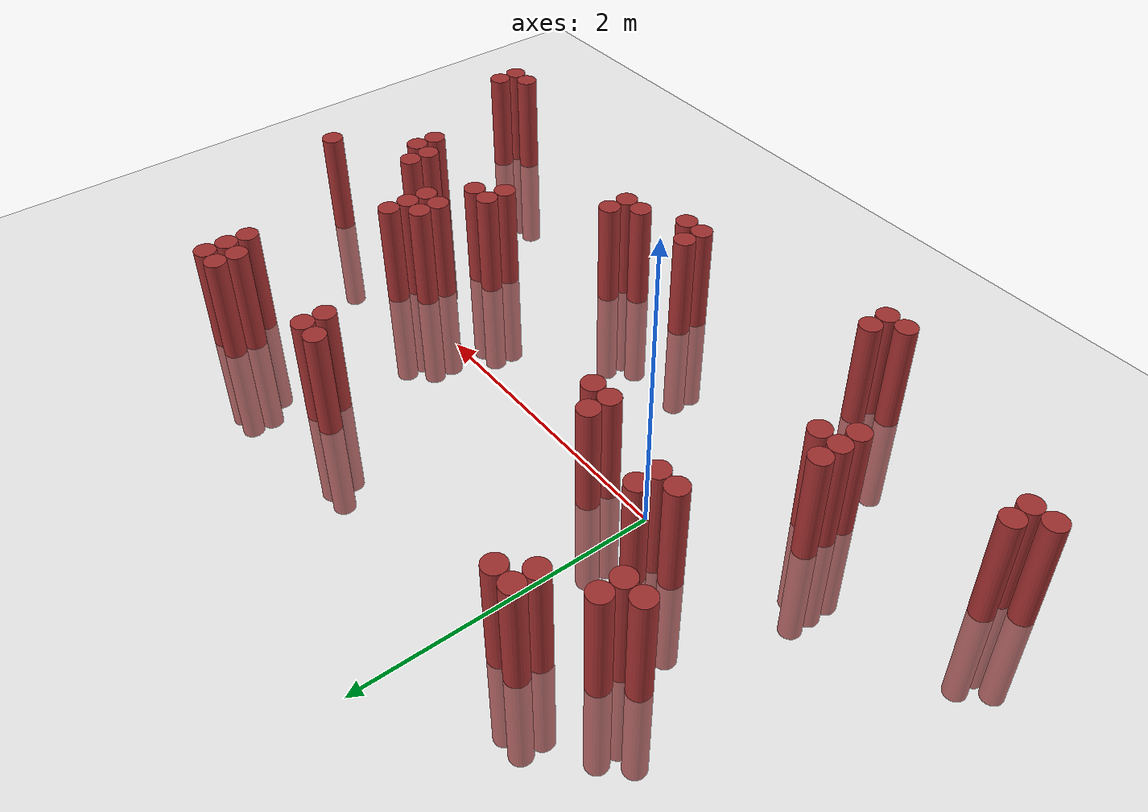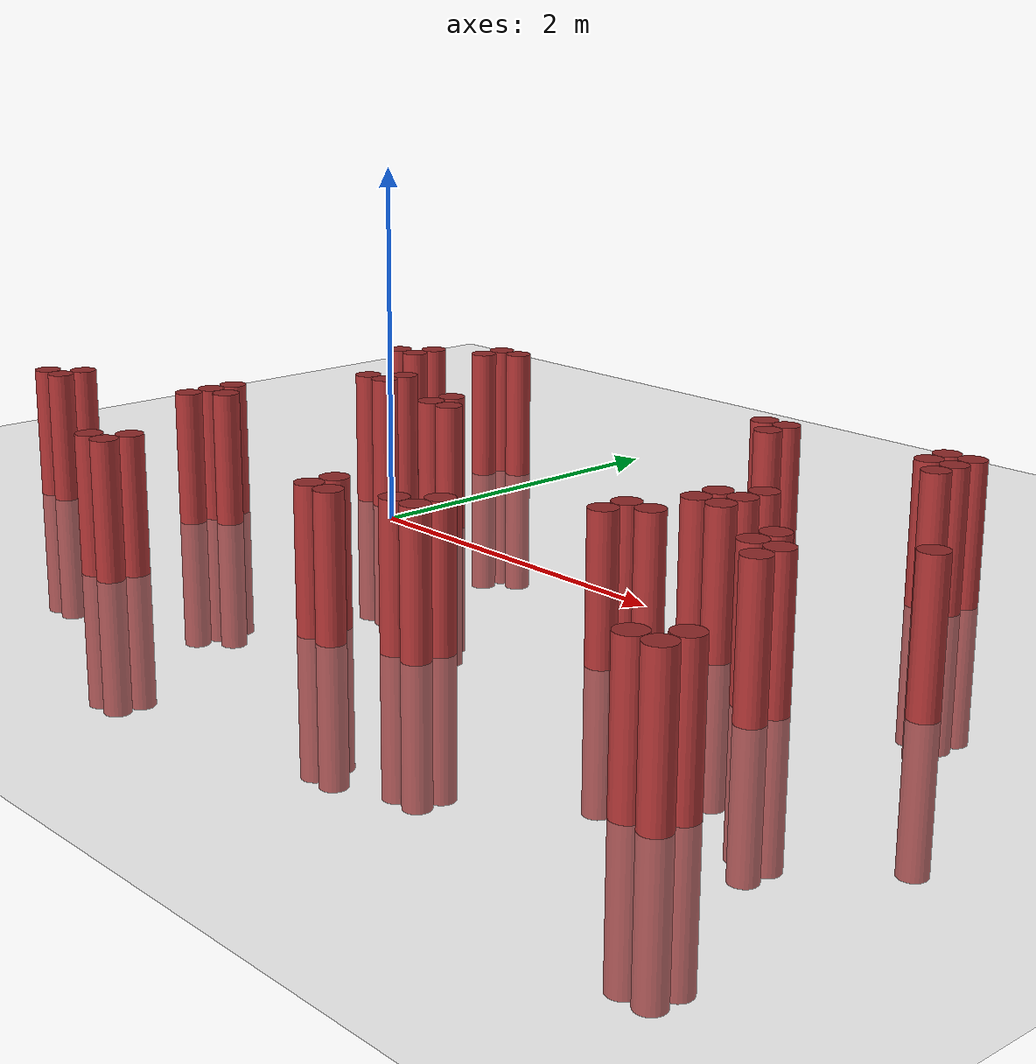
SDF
<sdf version="1.6">
 <world name="default">
  <model name="ground_plane">
   <static>1</static>
   <link name="link">
    <collision name="collision">
     <geometry><plane><normal>0 0 1</normal><size>100 100</size></plane></geometry>
     <surface><friction><ode><mu>100</mu><mu2>50</mu2></ode></friction></surface>
    </collision>
    <visual name="visual">
     <cast_shadows>0</cast_shadows>
     <geometry><plane><normal>0 0 1</normal><size>100 100</size></plane></geometry>
     <material>
      <script><uri>file://media/materials/scripts/gazebo.material</uri><name>Gazebo/Grey</name></script>
     </material>
    </visual>
   </link>
  </model>
  <model name="unit_cylinder_313">
   <static>1</static>
   <pose>-1.775000 -1.175000 0.000000 0.000000 0.000000 0.000000</pose>
   <link name="link">
    <inertial>
     <mass>1</mass>
     <inertia><ixx>0.145833</ixx><ixy>0</ixy><ixz>0</ixz><iyy>0.145833</iyy><iyz>0</iyz><izz>0.125</izz></inertia>
    </inertial>
    <collision name="collision">
     <geometry><cylinder><radius>0.075000</radius><length>1.5</length></cylinder></geometry>
    </collision>
    <visual name="visual">
     <geometry><cylinder><radius>0.075000</radius><length>1.5</length></cylinder></geometry>
     <material>
      <ambient>0.648000 0.192000 0.192000 1</ambient>
      <diffuse>0.648000 0.192000 0.192000 1</diffuse>
     </material>
     <material>
      <script><name>Gazebo/Grey</name><uri>file://media/materials/scripts/gazebo.material</uri></script>
     </material>
    </visual>
   </link>
  </model>
  <model name="unit_cylinder_315">
   <static>1</static>
   <pose>-1.625000 -1.175000 0.000000 0.000000 0.000000 0.000000</pose>
   <link name="link">
    <inertial>
     <mass>1</mass>
     <inertia><ixx>0.145833</ixx><ixy>0</ixy><ixz>0</ixz><iyy>0.145833</iyy><iyz>0</iyz><izz>0.125</izz></inertia>
    </inertial>
    <collision name="collision">
     <geometry><cylinder><radius>0.075000</radius><length>1.5</length></cylinder></geometry>
    </collision>
    <visual name="visual">
     <geometry><cylinder><radius>0.075000</radius><length>1.5</length></cylinder></geometry>
     <material>
      <ambient>0.648000 0.192000 0.192000 1</ambient>
      <diffuse>0.648000 0.192000 0.192000 1</diffuse>
     </material>
     <material>
      <script><name>Gazebo/Grey</name><uri>file://media/materials/scripts/gazebo.material</uri></script>
     </material>
    </visual>
   </link>
  </model>
  <model name="unit_cylinder_316">
   <static>1</static>
   <pose>-1.625000 -1.025000 0.000000 0.000000 0.000000 0.000000</pose>
   <link name="link">
    <inertial>
     <mass>1</mass>
     <inertia><ixx>0.145833</ixx><ixy>0</ixy><ixz>0</ixz><iyy>0.145833</iyy><iyz>0</iyz><izz>0.125</izz></inertia>
    </inertial>
    <collision name="collision">
     <geometry><cylinder><radius>0.075000</radius><length>1.5</length></cylinder></geometry>
    </collision>
    <visual name="visual">
     <geometry><cylinder><radius>0.075000</radius><length>1.5</length></cylinder></geometry>
     <material>
      <ambient>0.648000 0.192000 0.192000 1</ambient>
      <diffuse>0.648000 0.192000 0.192000 1</diffuse>
     </material>
     <material>
      <script><name>Gazebo/Grey</name><uri>file://media/materials/scripts/gazebo.material</uri></script>
     </material>
    </visual>
   </link>
  </model>
  <model name="unit_cylinder_329">
   <static>1</static>
   <pose>-0.875000 0.775000 0.000000 0.000000 0.000000 0.000000</pose>
   <link name="link">
    <inertial>
     <mass>1</mass>
     <inertia><ixx>0.145833</ixx><ixy>0</ixy><ixz>0</ixz><iyy>0.145833</iyy><iyz>0</iyz><izz>0.125</izz></inertia>
    </inertial>
    <collision name="collision">
     <geometry><cylinder><radius>0.075000</radius><length>1.5</length></cylinder></geometry>
    </collision>
    <visual name="visual">
     <geometry><cylinder><radius>0.075000</radius><length>1.5</length></cylinder></geometry>
     <material>
      <ambient>0.648000 0.192000 0.192000 1</ambient>
      <diffuse>0.648000 0.192000 0.192000 1</diffuse>
     </material>
     <material>
      <script><name>Gazebo/Grey</name><uri>file://media/materials/scripts/gazebo.material</uri></script>
     </material>
    </visual>
   </link>
  </model>
  <model name="unit_cylinder_333">
   <static>1</static>
   <pose>-0.725000 -0.875000 0.000000 0.000000 0.000000 0.000000</pose>
   <link name="link">
    <inertial>
     <mass>1</mass>
     <inertia><ixx>0.145833</ixx><ixy>0</ixy><ixz>0</ixz><iyy>0.145833</iyy><iyz>0</iyz><izz>0.125</izz></inertia>
    </inertial>
    <collision name="collision">
     <geometry><cylinder><radius>0.075000</radius><length>1.5</length></cylinder></geometry>
    </collision>
    <visual name="visual">
     <geometry><cylinder><radius>0.075000</radius><length>1.5</length></cylinder></geometry>
     <material>
      <ambient>0.648000 0.192000 0.192000 1</ambient>
      <diffuse>0.648000 0.192000 0.192000 1</diffuse>
     </material>
     <material>
      <script><name>Gazebo/Grey</name><uri>file://media/materials/scripts/gazebo.material</uri></script>
     </material>
    </visual>
   </link>
  </model>
  <model name="unit_cylinder_334">
   <static>1</static>
   <pose>-0.725000 -0.725000 0.000000 0.000000 0.000000 0.000000</pose>
   <link name="link">
    <inertial>
     <mass>1</mass>
     <inertia><ixx>0.145833</ixx><ixy>0</ixy><ixz>0</ixz><iyy>0.145833</iyy><iyz>0</iyz><izz>0.125</izz></inertia>
    </inertial>
    <collision name="collision">
     <geometry><cylinder><radius>0.075000</radius><length>1.5</length></cylinder></geometry>
    </collision>
    <visual name="visual">
     <geometry><cylinder><radius>0.075000</radius><length>1.5</length></cylinder></geometry>
     <material>
      <ambient>0.648000 0.192000 0.192000 1</ambient>
      <diffuse>0.648000 0.192000 0.192000 1</diffuse>
     </material>
     <material>
      <script><name>Gazebo/Grey</name><uri>file://media/materials/scripts/gazebo.material</uri></script>
     </material>
    </visual>
   </link>
  </model>
  <model name="unit_cylinder_335">
   <static>1</static>
   <pose>-0.725000 -0.575000 0.000000 0.000000 0.000000 0.000000</pose>
   <link name="link">
    <inertial>
     <mass>1</mass>
     <inertia><ixx>0.145833</ixx><ixy>0</ixy><ixz>0</ixz><iyy>0.145833</iyy><iyz>0</iyz><izz>0.125</izz></inertia>
    </inertial>
    <collision name="collision">
     <geometry><cylinder><radius>0.075000</radius><length>1.5</length></cylinder></geometry>
    </collision>
    <visual name="visual">
     <geometry><cylinder><radius>0.075000</radius><length>1.5</length></cylinder></geometry>
     <material>
      <ambient>0.648000 0.192000 0.192000 1</ambient>
      <diffuse>0.648000 0.192000 0.192000 1</diffuse>
     </material>
     <material>
      <script><name>Gazebo/Grey</name><uri>file://media/materials/scripts/gazebo.material</uri></script>
     </material>
    </visual>
   </link>
  </model>
  <model name="unit_cylinder_336">
   <static>1</static>
   <pose>-0.725000 0.775000 0.000000 0.000000 0.000000 0.000000</pose>
   <link name="link">
    <inertial>
     <mass>1</mass>
     <inertia><ixx>0.145833</ixx><ixy>0</ixy><ixz>0</ixz><iyy>0.145833</iyy><iyz>0</iyz><izz>0.125</izz></inertia>
    </inertial>
    <collision name="collision">
     <geometry><cylinder><radius>0.075000</radius><length>1.5</length></cylinder></geometry>
    </collision>
    <visual name="visual">
     <geometry><cylinder><radius>0.075000</radius><length>1.5</length></cylinder></geometry>
     <material>
      <ambient>0.648000 0.192000 0.192000 1</ambient>
      <diffuse>0.648000 0.192000 0.192000 1</diffuse>
     </material>
     <material>
      <script><name>Gazebo/Grey</name><uri>file://media/materials/scripts/gazebo.material</uri></script>
     </material>
    </visual>
   </link>
  </model>
  <model name="unit_cylinder_337">
   <static>1</static>
   <pose>-0.725000 0.925000 0.000000 0.000000 0.000000 0.000000</pose>
   <link name="link">
    <inertial>
     <mass>1</mass>
     <inertia><ixx>0.145833</ixx><ixy>0</ixy><ixz>0</ixz><iyy>0.145833</iyy><iyz>0</iyz><izz>0.125</izz></inertia>
    </inertial>
    <collision name="collision">
     <geometry><cylinder><radius>0.075000</radius><length>1.5</length></cylinder></geometry>
    </collision>
    <visual name="visual">
     <geometry><cylinder><radius>0.075000</radius><length>1.5</length></cylinder></geometry>
     <material>
      <ambient>0.648000 0.192000 0.192000 1</ambient>
      <diffuse>0.648000 0.192000 0.192000 1</diffuse>
     </material>
     <material>
      <script><name>Gazebo/Grey</name><uri>file://media/materials/scripts/gazebo.material</uri></script>
     </material>
    </visual>
   </link>
  </model>
  <model name="unit_cylinder_339">
   <static>1</static>
   <pose>-0.575000 -0.725000 0.000000 0.000000 0.000000 0.000000</pose>
   <link name="link">
    <inertial>
     <mass>1</mass>
     <inertia><ixx>0.145833</ixx><ixy>0</ixy><ixz>0</ixz><iyy>0.145833</iyy><iyz>0</iyz><izz>0.125</izz></inertia>
    </inertial>
    <collision name="collision">
     <geometry><cylinder><radius>0.075000</radius><length>1.5</length></cylinder></geometry>
    </collision>
    <visual name="visual">
     <geometry><cylinder><radius>0.075000</radius><length>1.5</length></cylinder></geometry>
     <material>
      <ambient>0.648000 0.192000 0.192000 1</ambient>
      <diffuse>0.648000 0.192000 0.192000 1</diffuse>
     </material>
     <material>
      <script><name>Gazebo/Grey</name><uri>file://media/materials/scripts/gazebo.material</uri></script>
     </material>
    </visual>
   </link>
  </model>
  <model name="unit_cylinder_340">
   <static>1</static>
   <pose>-0.425000 0.175000 0.000000 0.000000 0.000000 0.000000</pose>
   <link name="link">
    <inertial>
     <mass>1</mass>
     <inertia><ixx>0.145833</ixx><ixy>0</ixy><ixz>0</ixz><iyy>0.145833</iyy><iyz>0</iyz><izz>0.125</izz></inertia>
    </inertial>
    <collision name="collision">
     <geometry><cylinder><radius>0.075000</radius><length>1.5</length></cylinder></geometry>
    </collision>
    <visual name="visual">
     <geometry><cylinder><radius>0.075000</radius><length>1.5</length></cylinder></geometry>
     <material>
      <ambient>0.648000 0.192000 0.192000 1</ambient>
      <diffuse>0.648000 0.192000 0.192000 1</diffuse>
     </material>
     <material>
      <script><name>Gazebo/Grey</name><uri>file://media/materials/scripts/gazebo.material</uri></script>
     </material>
    </visual>
   </link>
  </model>
  <model name="unit_cylinder_341">
   <static>1</static>
   <pose>-0.425000 1.075000 0.000000 0.000000 0.000000 0.000000</pose>
   <link name="link">
    <inertial>
     <mass>1</mass>
     <inertia><ixx>0.145833</ixx><ixy>0</ixy><ixz>0</ixz><iyy>0.145833</iyy><iyz>0</iyz><izz>0.125</izz></inertia>
    </inertial>
    <collision name="collision">
     <geometry><cylinder><radius>0.075000</radius><length>1.5</length></cylinder></geometry>
    </collision>
    <visual name="visual">
     <geometry><cylinder><radius>0.075000</radius><length>1.5</length></cylinder></geometry>
     <material>
      <ambient>0.648000 0.192000 0.192000 1</ambient>
      <diffuse>0.648000 0.192000 0.192000 1</diffuse>
     </material>
     <material>
      <script><name>Gazebo/Grey</name><uri>file://media/materials/scripts/gazebo.material</uri></script>
     </material>
    </visual>
   </link>
  </model>
  <model name="unit_cylinder_342">
   <static>1</static>
   <pose>-0.425000 1.225000 0.000000 0.000000 0.000000 0.000000</pose>
   <link name="link">
    <inertial>
     <mass>1</mass>
     <inertia><ixx>0.145833</ixx><ixy>0</ixy><ixz>0</ixz><iyy>0.145833</iyy><iyz>0</iyz><izz>0.125</izz></inertia>
    </inertial>
    <collision name="collision">
     <geometry><cylinder><radius>0.075000</radius><length>1.5</length></cylinder></geometry>
    </collision>
    <visual name="visual">
     <geometry><cylinder><radius>0.075000</radius><length>1.5</length></cylinder></geometry>
     <material>
      <ambient>0.648000 0.192000 0.192000 1</ambient>
      <diffuse>0.648000 0.192000 0.192000 1</diffuse>
     </material>
     <material>
      <script><name>Gazebo/Grey</name><uri>file://media/materials/scripts/gazebo.material</uri></script>
     </material>
    </visual>
   </link>
  </model>
  <model name="unit_cylinder_343">
   <static>1</static>
   <pose>-0.275000 -1.775000 0.000000 0.000000 0.000000 0.000000</pose>
   <link name="link">
    <inertial>
     <mass>1</mass>
     <inertia><ixx>0.145833</ixx><ixy>0</ixy><ixz>0</ixz><iyy>0.145833</iyy><iyz>0</iyz><izz>0.125</izz></inertia>
    </inertial>
    <collision name="collision">
     <geometry><cylinder><radius>0.075000</radius><length>1.5</length></cylinder></geometry>
    </collision>
    <visual name="visual">
     <geometry><cylinder><radius>0.075000</radius><length>1.5</length></cylinder></geometry>
     <material>
      <ambient>0.648000 0.192000 0.192000 1</ambient>
      <diffuse>0.648000 0.192000 0.192000 1</diffuse>
     </material>
     <material>
      <script><name>Gazebo/Grey</name><uri>file://media/materials/scripts/gazebo.material</uri></script>
     </material>
    </visual>
   </link>
  </model>
  <model name="unit_cylinder_344">
   <static>1</static>
   <pose>-0.275000 0.175000 0.000000 0.000000 0.000000 0.000000</pose>
   <link name="link">
    <inertial>
     <mass>1</mass>
     <inertia><ixx>0.145833</ixx><ixy>0</ixy><ixz>0</ixz><iyy>0.145833</iyy><iyz>0</iyz><izz>0.125</izz></inertia>
    </inertial>
    <collision name="collision">
     <geometry><cylinder><radius>0.075000</radius><length>1.5</length></cylinder></geometry>
    </collision>
    <visual name="visual">
     <geometry><cylinder><radius>0.075000</radius><length>1.5</length></cylinder></geometry>
     <material>
      <ambient>0.648000 0.192000 0.192000 1</ambient>
      <diffuse>0.648000 0.192000 0.192000 1</diffuse>
     </material>
     <material>
      <script><name>Gazebo/Grey</name><uri>file://media/materials/scripts/gazebo.material</uri></script>
     </material>
    </visual>
   </link>
  </model>
  <model name="unit_cylinder_345">
   <static>1</static>
   <pose>-0.275000 0.325000 0.000000 0.000000 0.000000 0.000000</pose>
   <link name="link">
    <inertial>
     <mass>1</mass>
     <inertia><ixx>0.145833</ixx><ixy>0</ixy><ixz>0</ixz><iyy>0.145833</iyy><iyz>0</iyz><izz>0.125</izz></inertia>
    </inertial>
    <collision name="collision">
     <geometry><cylinder><radius>0.075000</radius><length>1.5</length></cylinder></geometry>
    </collision>
    <visual name="visual">
     <geometry><cylinder><radius>0.075000</radius><length>1.5</length></cylinder></geometry>
     <material>
      <ambient>0.648000 0.192000 0.192000 1</ambient>
      <diffuse>0.648000 0.192000 0.192000 1</diffuse>
     </material>
     <material>
      <script><name>Gazebo/Grey</name><uri>file://media/materials/scripts/gazebo.material</uri></script>
     </material>
    </visual>
   </link>
  </model>
  <model name="unit_cylinder_346">
   <static>1</static>
   <pose>-0.275000 1.225000 0.000000 0.000000 0.000000 0.000000</pose>
   <link name="link">
    <inertial>
     <mass>1</mass>
     <inertia><ixx>0.145833</ixx><ixy>0</ixy><ixz>0</ixz><iyy>0.145833</iyy><iyz>0</iyz><izz>0.125</izz></inertia>
    </inertial>
    <collision name="collision">
     <geometry><cylinder><radius>0.075000</radius><length>1.5</length></cylinder></geometry>
    </collision>
    <visual name="visual">
     <geometry><cylinder><radius>0.075000</radius><length>1.5</length></cylinder></geometry>
     <material>
      <ambient>0.648000 0.192000 0.192000 1</ambient>
      <diffuse>0.648000 0.192000 0.192000 1</diffuse>
     </material>
     <material>
      <script><name>Gazebo/Grey</name><uri>file://media/materials/scripts/gazebo.material</uri></script>
     </material>
    </visual>
   </link>
  </model>
  <model name="unit_cylinder_347">
   <static>1</static>
   <pose>-0.125000 -1.775000 0.000000 0.000000 0.000000 0.000000</pose>
   <link name="link">
    <inertial>
     <mass>1</mass>
     <inertia><ixx>0.145833</ixx><ixy>0</ixy><ixz>0</ixz><iyy>0.145833</iyy><iyz>0</iyz><izz>0.125</izz></inertia>
    </inertial>
    <collision name="collision">
     <geometry><cylinder><radius>0.075000</radius><length>1.5</length></cylinder></geometry>
    </collision>
    <visual name="visual">
     <geometry><cylinder><radius>0.075000</radius><length>1.5</length></cylinder></geometry>
     <material>
      <ambient>0.648000 0.192000 0.192000 1</ambient>
      <diffuse>0.648000 0.192000 0.192000 1</diffuse>
     </material>
     <material>
      <script><name>Gazebo/Grey</name><uri>file://media/materials/scripts/gazebo.material</uri></script>
     </material>
    </visual>
   </link>
  </model>
  <model name="unit_cylinder_348">
   <static>1</static>
   <pose>-0.125000 -1.625000 0.000000 0.000000 0.000000 0.000000</pose>
   <link name="link">
    <inertial>
     <mass>1</mass>
     <inertia><ixx>0.145833</ixx><ixy>0</ixy><ixz>0</ixz><iyy>0.145833</iyy><iyz>0</iyz><izz>0.125</izz></inertia>
    </inertial>
    <collision name="collision">
     <geometry><cylinder><radius>0.075000</radius><length>1.5</length></cylinder></geometry>
    </collision>
    <visual name="visual">
     <geometry><cylinder><radius>0.075000</radius><length>1.5</length></cylinder></geometry>
     <material>
      <ambient>0.648000 0.192000 0.192000 1</ambient>
      <diffuse>0.648000 0.192000 0.192000 1</diffuse>
     </material>
     <material>
      <script><name>Gazebo/Grey</name><uri>file://media/materials/scripts/gazebo.material</uri></script>
     </material>
    </visual>
   </link>
  </model>
  <model name="unit_cylinder_352">
   <static>1</static>
   <pose>0.325000 0.025000 0.000000 0.000000 0.000000 0.000000</pose>
   <link name="link">
    <inertial>
     <mass>1</mass>
     <inertia><ixx>0.145833</ixx><ixy>0</ixy><ixz>0</ixz><iyy>0.145833</iyy><iyz>0</iyz><izz>0.125</izz></inertia>
    </inertial>
    <collision name="collision">
     <geometry><cylinder><radius>0.075000</radius><length>1.5</length></cylinder></geometry>
    </collision>
    <visual name="visual">
     <geometry><cylinder><radius>0.075000</radius><length>1.5</length></cylinder></geometry>
     <material>
      <ambient>0.648000 0.192000 0.192000 1</ambient>
      <diffuse>0.648000 0.192000 0.192000 1</diffuse>
     </material>
     <material>
      <script><name>Gazebo/Grey</name><uri>file://media/materials/scripts/gazebo.material</uri></script>
     </material>
    </visual>
   </link>
  </model>
  <model name="unit_cylinder_353">
   <static>1</static>
   <pose>0.325000 0.175000 0.000000 0.000000 0.000000 0.000000</pose>
   <link name="link">
    <inertial>
     <mass>1</mass>
     <inertia><ixx>0.145833</ixx><ixy>0</ixy><ixz>0</ixz><iyy>0.145833</iyy><iyz>0</iyz><izz>0.125</izz></inertia>
    </inertial>
    <collision name="collision">
     <geometry><cylinder><radius>0.075000</radius><length>1.5</length></cylinder></geometry>
    </collision>
    <visual name="visual">
     <geometry><cylinder><radius>0.075000</radius><length>1.5</length></cylinder></geometry>
     <material>
      <ambient>0.648000 0.192000 0.192000 1</ambient>
      <diffuse>0.648000 0.192000 0.192000 1</diffuse>
     </material>
     <material>
      <script><name>Gazebo/Grey</name><uri>file://media/materials/scripts/gazebo.material</uri></script>
     </material>
    </visual>
   </link>
  </model>
  <model name="unit_cylinder_354">
   <static>1</static>
   <pose>0.475000 0.025000 0.000000 0.000000 0.000000 0.000000</pose>
   <link name="link">
    <inertial>
     <mass>1</mass>
     <inertia><ixx>0.145833</ixx><ixy>0</ixy><ixz>0</ixz><iyy>0.145833</iyy><iyz>0</iyz><izz>0.125</izz></inertia>
    </inertial>
    <collision name="collision">
     <geometry><cylinder><radius>0.075000</radius><length>1.5</length></cylinder></geometry>
    </collision>
    <visual name="visual">
     <geometry><cylinder><radius>0.075000</radius><length>1.5</length></cylinder></geometry>
     <material>
      <ambient>0.648000 0.192000 0.192000 1</ambient>
      <diffuse>0.648000 0.192000 0.192000 1</diffuse>
     </material>
     <material>
      <script><name>Gazebo/Grey</name><uri>file://media/materials/scripts/gazebo.material</uri></script>
     </material>
    </visual>
   </link>
  </model>
  <model name="unit_cylinder_370">
   <static>1</static>
   <pose>1.225000 -1.475000 0.000000 0.000000 0.000000 0.000000</pose>
   <link name="link">
    <inertial>
     <mass>1</mass>
     <inertia><ixx>0.145833</ixx><ixy>0</ixy><ixz>0</ixz><iyy>0.145833</iyy><iyz>0</iyz><izz>0.125</izz></inertia>
    </inertial>
    <collision name="collision">
     <geometry><cylinder><radius>0.075000</radius><length>1.5</length></cylinder></geometry>
    </collision>
    <visual name="visual">
     <geometry><cylinder><radius>0.075000</radius><length>1.5</length></cylinder></geometry>
     <material>
      <ambient>0.648000 0.192000 0.192000 1</ambient>
      <diffuse>0.648000 0.192000 0.192000 1</diffuse>
     </material>
     <material>
      <script><name>Gazebo/Grey</name><uri>file://media/materials/scripts/gazebo.material</uri></script>
     </material>
    </visual>
   </link>
  </model>
  <model name="unit_cylinder_371">
   <static>1</static>
   <pose>1.225000 -1.325000 0.000000 0.000000 0.000000 0.000000</pose>
   <link name="link">
    <inertial>
     <mass>1</mass>
     <inertia><ixx>0.145833</ixx><ixy>0</ixy><ixz>0</ixz><iyy>0.145833</iyy><iyz>0</iyz><izz>0.125</izz></inertia>
    </inertial>
    <collision name="collision">
     <geometry><cylinder><radius>0.075000</radius><length>1.5</length></cylinder></geometry>
    </collision>
    <visual name="visual">
     <geometry><cylinder><radius>0.075000</radius><length>1.5</length></cylinder></geometry>
     <material>
      <ambient>0.648000 0.192000 0.192000 1</ambient>
      <diffuse>0.648000 0.192000 0.192000 1</diffuse>
     </material>
     <material>
      <script><name>Gazebo/Grey</name><uri>file://media/materials/scripts/gazebo.material</uri></script>
     </material>
    </visual>
   </link>
  </model>
  <model name="unit_cylinder_379">
   <static>1</static>
   <pose>1.375000 -1.475000 0.000000 0.000000 0.000000 0.000000</pose>
   <link name="link">
    <inertial>
     <mass>1</mass>
     <inertia><ixx>0.145833</ixx><ixy>0</ixy><ixz>0</ixz><iyy>0.145833</iyy><iyz>0</iyz><izz>0.125</izz></inertia>
    </inertial>
    <collision name="collision">
     <geometry><cylinder><radius>0.075000</radius><length>1.5</length></cylinder></geometry>
    </collision>
    <visual name="visual">
     <geometry><cylinder><radius>0.075000</radius><length>1.5</length></cylinder></geometry>
     <material>
      <ambient>0.648000 0.192000 0.192000 1</ambient>
      <diffuse>0.648000 0.192000 0.192000 1</diffuse>
     </material>
     <material>
      <script><name>Gazebo/Grey</name><uri>file://media/materials/scripts/gazebo.material</uri></script>
     </material>
    </visual>
   </link>
  </model>
  <model name="unit_cylinder_388">
   <static>1</static>
   <pose>1.675000 -1.325000 0.000000 0.000000 0.000000 0.000000</pose>
   <link name="link">
    <inertial>
     <mass>1</mass>
     <inertia><ixx>0.145833</ixx><ixy>0</ixy><ixz>0</ixz><iyy>0.145833</iyy><iyz>0</iyz><izz>0.125</izz></inertia>
    </inertial>
    <collision name="collision">
     <geometry><cylinder><radius>0.075000</radius><length>1.5</length></cylinder></geometry>
    </collision>
    <visual name="visual">
     <geometry><cylinder><radius>0.075000</radius><length>1.5</length></cylinder></geometry>
     <material>
      <ambient>0.648000 0.192000 0.192000 1</ambient>
      <diffuse>0.648000 0.192000 0.192000 1</diffuse>
     </material>
     <material>
      <script><name>Gazebo/Grey</name><uri>file://media/materials/scripts/gazebo.material</uri></script>
     </material>
    </visual>
   </link>
  </model>
  <model name="unit_cylinder_391">
   <static>1</static>
   <pose>1.825000 -1.325000 0.000000 0.000000 0.000000 0.000000</pose>
   <link name="link">
    <inertial>
     <mass>1</mass>
     <inertia><ixx>0.145833</ixx><ixy>0</ixy><ixz>0</ixz><iyy>0.145833</iyy><iyz>0</iyz><izz>0.125</izz></inertia>
    </inertial>
    <collision name="collision">
     <geometry><cylinder><radius>0.075000</radius><length>1.5</length></cylinder></geometry>
    </collision>
    <visual name="visual">
     <geometry><cylinder><radius>0.075000</radius><length>1.5</length></cylinder></geometry>
     <material>
      <ambient>0.648000 0.192000 0.192000 1</ambient>
      <diffuse>0.648000 0.192000 0.192000 1</diffuse>
     </material>
     <material>
      <script><name>Gazebo/Grey</name><uri>file://media/materials/scripts/gazebo.material</uri></script>
     </material>
    </visual>
   </link>
  </model>
  <model name="unit_cylinder_392">
   <static>1</static>
   <pose>1.825000 -1.175000 0.000000 0.000000 0.000000 0.000000</pose>
   <link name="link">
    <inertial>
     <mass>1</mass>
     <inertia><ixx>0.145833</ixx><ixy>0</ixy><ixz>0</ixz><iyy>0.145833</iyy><iyz>0</iyz><izz>0.125</izz></inertia>
    </inertial>
    <collision name="collision">
     <geometry><cylinder><radius>0.075000</radius><length>1.5</length></cylinder></geometry>
    </collision>
    <visual name="visual">
     <geometry><cylinder><radius>0.075000</radius><length>1.5</length></cylinder></geometry>
     <material>
      <ambient>0.648000 0.192000 0.192000 1</ambient>
      <diffuse>0.648000 0.192000 0.192000 1</diffuse>
     </material>
     <material>
      <script><name>Gazebo/Grey</name><uri>file://media/materials/scripts/gazebo.material</uri></script>
     </material>
    </visual>
   </link>
  </model>
  <model name="unit_cylinder_393">
   <static>1</static>
   <pose>1.825000 1.075000 0.000000 0.000000 0.000000 0.000000</pose>
   <link name="link">
    <inertial>
     <mass>1</mass>
     <inertia><ixx>0.145833</ixx><ixy>0</ixy><ixz>0</ixz><iyy>0.145833</iyy><iyz>0</iyz><izz>0.125</izz></inertia>
    </inertial>
    <collision name="collision">
     <geometry><cylinder><radius>0.075000</radius><length>1.5</length></cylinder></geometry>
    </collision>
    <visual name="visual">
     <geometry><cylinder><radius>0.075000</radius><length>1.5</length></cylinder></geometry>
     <material>
      <ambient>0.648000 0.192000 0.192000 1</ambient>
      <diffuse>0.648000 0.192000 0.192000 1</diffuse>
     </material>
     <material>
      <script><name>Gazebo/Grey</name><uri>file://media/materials/scripts/gazebo.material</uri></script>
     </material>
    </visual>
   </link>
  </model>
  <model name="unit_cylinder_396">
   <static>1</static>
   <pose>1.975000 0.925000 0.000000 0.000000 0.000000 0.000000</pose>
   <link name="link">
    <inertial>
     <mass>1</mass>
     <inertia><ixx>0.145833</ixx><ixy>0</ixy><ixz>0</ixz><iyy>0.145833</iyy><iyz>0</iyz><izz>0.125</izz></inertia>
    </inertial>
    <collision name="collision">
     <geometry><cylinder><radius>0.075000</radius><length>1.5</length></cylinder></geometry>
    </collision>
    <visual name="visual">
     <geometry><cylinder><radius>0.075000</radius><length>1.5</length></cylinder></geometry>
     <material>
      <ambient>0.648000 0.192000 0.192000 1</ambient>
      <diffuse>0.648000 0.192000 0.192000 1</diffuse>
     </material>
     <material>
      <script><name>Gazebo/Grey</name><uri>file://media/materials/scripts/gazebo.material</uri></script>
     </material>
    </visual>
   </link>
  </model>
  <model name="unit_cylinder_397">
   <static>1</static>
   <pose>1.975000 1.075000 0.000000 0.000000 0.000000 0.000000</pose>
   <link name="link">
    <inertial>
     <mass>1</mass>
     <inertia><ixx>0.145833</ixx><ixy>0</ixy><ixz>0</ixz><iyy>0.145833</iyy><iyz>0</iyz><izz>0.125</izz></inertia>
    </inertial>
    <collision name="collision">
     <geometry><cylinder><radius>0.075000</radius><length>1.5</length></cylinder></geometry>
    </collision>
    <visual name="visual">
     <geometry><cylinder><radius>0.075000</radius><length>1.5</length></cylinder></geometry>
     <material>
      <ambient>0.648000 0.192000 0.192000 1</ambient>
      <diffuse>0.648000 0.192000 0.192000 1</diffuse>
     </material>
     <material>
      <script><name>Gazebo/Grey</name><uri>file://media/materials/scripts/gazebo.material</uri></script>
     </material>
    </visual>
   </link>
  </model>
  <model name="unit_cylinder_408">
   <static>1</static>
   <pose>2.425000 -0.725000 0.000000 0.000000 0.000000 0.000000</pose>
   <link name="link">
    <inertial>
     <mass>1</mass>
     <inertia><ixx>0.145833</ixx><ixy>0</ixy><ixz>0</ixz><iyy>0.145833</iyy><iyz>0</iyz><izz>0.125</izz></inertia>
    </inertial>
    <collision name="collision">
     <geometry><cylinder><radius>0.075000</radius><length>1.5</length></cylinder></geometry>
    </collision>
    <visual name="visual">
     <geometry><cylinder><radius>0.075000</radius><length>1.5</length></cylinder></geometry>
     <material>
      <ambient>0.648000 0.192000 0.192000 1</ambient>
      <diffuse>0.648000 0.192000 0.192000 1</diffuse>
     </material>
     <material>
      <script><name>Gazebo/Grey</name><uri>file://media/materials/scripts/gazebo.material</uri></script>
     </material>
    </visual>
   </link>
  </model>
  <model name="unit_cylinder_409">
   <static>1</static>
   <pose>2.425000 -0.575000 0.000000 0.000000 0.000000 0.000000</pose>
   <link name="link">
    <inertial>
     <mass>1</mass>
     <inertia><ixx>0.145833</ixx><ixy>0</ixy><ixz>0</ixz><iyy>0.145833</iyy><iyz>0</iyz><izz>0.125</izz></inertia>
    </inertial>
    <collision name="collision">
     <geometry><cylinder><radius>0.075000</radius><length>1.5</length></cylinder></geometry>
    </collision>
    <visual name="visual">
     <geometry><cylinder><radius>0.075000</radius><length>1.5</length></cylinder></geometry>
     <material>
      <ambient>0.648000 0.192000 0.192000 1</ambient>
      <diffuse>0.648000 0.192000 0.192000 1</diffuse>
     </material>
     <material>
      <script><name>Gazebo/Grey</name><uri>file://media/materials/scripts/gazebo.material</uri></script>
     </material>
    </visual>
   </link>
  </model>
  <model name="unit_cylinder_411">
   <static>1</static>
   <pose>2.575000 -0.575000 0.000000 0.000000 0.000000 0.000000</pose>
   <link name="link">
    <inertial>
     <mass>1</mass>
     <inertia><ixx>0.145833</ixx><ixy>0</ixy><ixz>0</ixz><iyy>0.145833</iyy><iyz>0</iyz><izz>0.125</izz></inertia>
    </inertial>
    <collision name="collision">
     <geometry><cylinder><radius>0.075000</radius><length>1.5</length></cylinder></geometry>
    </collision>
    <visual name="visual">
     <geometry><cylinder><radius>0.075000</radius><length>1.5</length></cylinder></geometry>
     <material>
      <ambient>0.648000 0.192000 0.192000 1</ambient>
      <diffuse>0.648000 0.192000 0.192000 1</diffuse>
     </material>
     <material>
      <script><name>Gazebo/Grey</name><uri>file://media/materials/scripts/gazebo.material</uri></script>
     </material>
    </visual>
   </link>
  </model>
  <model name="unit_cylinder_412">
   <static>1</static>
   <pose>2.575000 -0.275000 0.000000 0.000000 0.000000 0.000000</pose>
   <link name="link">
    <inertial>
     <mass>1</mass>
     <inertia><ixx>0.145833</ixx><ixy>0</ixy><ixz>0</ixz><iyy>0.145833</iyy><iyz>0</iyz><izz>0.125</izz></inertia>
    </inertial>
    <collision name="collision">
     <geometry><cylinder><radius>0.075000</radius><length>1.5</length></cylinder></geometry>
    </collision>
    <visual name="visual">
     <geometry><cylinder><radius>0.075000</radius><length>1.5</length></cylinder></geometry>
     <material>
      <ambient>0.648000 0.192000 0.192000 1</ambient>
      <diffuse>0.648000 0.192000 0.192000 1</diffuse>
     </material>
     <material>
      <script><name>Gazebo/Grey</name><uri>file://media/materials/scripts/gazebo.material</uri></script>
     </material>
    </visual>
   </link>
  </model>
  <model name="unit_cylinder_413">
   <static>1</static>
   <pose>2.575000 -0.125000 0.000000 0.000000 0.000000 0.000000</pose>
   <link name="link">
    <inertial>
     <mass>1</mass>
     <inertia><ixx>0.145833</ixx><ixy>0</ixy><ixz>0</ixz><iyy>0.145833</iyy><iyz>0</iyz><izz>0.125</izz></inertia>
    </inertial>
    <collision name="collision">
     <geometry><cylinder><radius>0.075000</radius><length>1.5</length></cylinder></geometry>
    </collision>
    <visual name="visual">
     <geometry><cylinder><radius>0.075000</radius><length>1.5</length></cylinder></geometry>
     <material>
      <ambient>0.648000 0.192000 0.192000 1</ambient>
      <diffuse>0.648000 0.192000 0.192000 1</diffuse>
     </material>
     <material>
      <script><name>Gazebo/Grey</name><uri>file://media/materials/scripts/gazebo.material</uri></script>
     </material>
    </visual>
   </link>
  </model>
  <model name="unit_cylinder_417">
   <static>1</static>
   <pose>2.725000 -0.275000 0.000000 0.000000 0.000000 0.000000</pose>
   <link name="link">
    <inertial>
     <mass>1</mass>
     <inertia><ixx>0.145833</ixx><ixy>0</ixy><ixz>0</ixz><iyy>0.145833</iyy><iyz>0</iyz><izz>0.125</izz></inertia>
    </inertial>
    <collision name="collision">
     <geometry><cylinder><radius>0.075000</radius><length>1.5</length></cylinder></geometry>
    </collision>
    <visual name="visual">
     <geometry><cylinder><radius>0.075000</radius><length>1.5</length></cylinder></geometry>
     <material>
      <ambient>0.648000 0.192000 0.192000 1</ambient>
      <diffuse>0.648000 0.192000 0.192000 1</diffuse>
     </material>
     <material>
      <script><name>Gazebo/Grey</name><uri>file://media/materials/scripts/gazebo.material</uri></script>
     </material>
    </visual>
   </link>
  </model>
  <model name="unit_cylinder_418">
   <static>1</static>
   <pose>2.725000 -0.125000 0.000000 0.000000 0.000000 0.000000</pose>
   <link name="link">
    <inertial>
     <mass>1</mass>
     <inertia><ixx>0.145833</ixx><ixy>0</ixy><ixz>0</ixz><iyy>0.145833</iyy><iyz>0</iyz><izz>0.125</izz></inertia>
    </inertial>
    <collision name="collision">
     <geometry><cylinder><radius>0.075000</radius><length>1.5</length></cylinder></geometry>
    </collision>
    <visual name="visual">
     <geometry><cylinder><radius>0.075000</radius><length>1.5</length></cylinder></geometry>
     <material>
      <ambient>0.648000 0.192000 0.192000 1</ambient>
      <diffuse>0.648000 0.192000 0.192000 1</diffuse>
     </material>
     <material>
      <script><name>Gazebo/Grey</name><uri>file://media/materials/scripts/gazebo.material</uri></script>
     </material>
    </visual>
   </link>
  </model>
  <model name="unit_cylinder_419">
   <static>1</static>
   <pose>2.725000 0.025000 0.000000 0.000000 0.000000 0.000000</pose>
   <link name="link">
    <inertial>
     <mass>1</mass>
     <inertia><ixx>0.145833</ixx><ixy>0</ixy><ixz>0</ixz><iyy>0.145833</iyy><iyz>0</iyz><izz>0.125</izz></inertia>
    </inertial>
    <collision name="collision">
     <geometry><cylinder><radius>0.075000</radius><length>1.5</length></cylinder></geometry>
    </collision>
    <visual name="visual">
     <geometry><cylinder><radius>0.075000</radius><length>1.5</length></cylinder></geometry>
     <material>
      <ambient>0.648000 0.192000 0.192000 1</ambient>
      <diffuse>0.648000 0.192000 0.192000 1</diffuse>
     </material>
     <material>
      <script><name>Gazebo/Grey</name><uri>file://media/materials/scripts/gazebo.material</uri></script>
     </material>
    </visual>
   </link>
  </model>
  <model name="unit_cylinder_427">
   <static>1</static>
   <pose>2.875000 1.075000 0.000000 0.000000 0.000000 0.000000</pose>
   <link name="link">
    <inertial>
     <mass>1</mass>
     <inertia><ixx>0.145833</ixx><ixy>0</ixy><ixz>0</ixz><iyy>0.145833</iyy><iyz>0</iyz><izz>0.125</izz></inertia>
    </inertial>
    <collision name="collision">
     <geometry><cylinder><radius>0.075000</radius><length>1.5</length></cylinder></geometry>
    </collision>
    <visual name="visual">
     <geometry><cylinder><radius>0.075000</radius><length>1.5</length></cylinder></geometry>
     <material>
      <ambient>0.648000 0.192000 0.192000 1</ambient>
      <diffuse>0.648000 0.192000 0.192000 1</diffuse>
     </material>
     <material>
      <script><name>Gazebo/Grey</name><uri>file://media/materials/scripts/gazebo.material</uri></script>
     </material>
    </visual>
   </link>
  </model>
  <model name="unit_cylinder_428">
   <static>1</static>
   <pose>2.875000 1.225000 0.000000 0.000000 0.000000 0.000000</pose>
   <link name="link">
    <inertial>
     <mass>1</mass>
     <inertia><ixx>0.145833</ixx><ixy>0</ixy><ixz>0</ixz><iyy>0.145833</iyy><iyz>0</iyz><izz>0.125</izz></inertia>
    </inertial>
    <collision name="collision">
     <geometry><cylinder><radius>0.075000</radius><length>1.5</length></cylinder></geometry>
    </collision>
    <visual name="visual">
     <geometry><cylinder><radius>0.075000</radius><length>1.5</length></cylinder></geometry>
     <material>
      <ambient>0.648000 0.192000 0.192000 1</ambient>
      <diffuse>0.648000 0.192000 0.192000 1</diffuse>
     </material>
     <material>
      <script><name>Gazebo/Grey</name><uri>file://media/materials/scripts/gazebo.material</uri></script>
     </material>
    </visual>
   </link>
  </model>
  <model name="unit_cylinder_436">
   <static>1</static>
   <pose>3.025000 0.925000 0.000000 0.000000 0.000000 0.000000</pose>
   <link name="link">
    <inertial>
     <mass>1</mass>
     <inertia><ixx>0.145833</ixx><ixy>0</ixy><ixz>0</ixz><iyy>0.145833</iyy><iyz>0</iyz><izz>0.125</izz></inertia>
    </inertial>
    <collision name="collision">
     <geometry><cylinder><radius>0.075000</radius><length>1.5</length></cylinder></geometry>
    </collision>
    <visual name="visual">
     <geometry><cylinder><radius>0.075000</radius><length>1.5</length></cylinder></geometry>
     <material>
      <ambient>0.648000 0.192000 0.192000 1</ambient>
      <diffuse>0.648000 0.192000 0.192000 1</diffuse>
     </material>
     <material>
      <script><name>Gazebo/Grey</name><uri>file://media/materials/scripts/gazebo.material</uri></script>
     </material>
    </visual>
   </link>
  </model>
  <model name="unit_cylinder_437">
   <static>1</static>
   <pose>3.025000 1.075000 0.000000 0.000000 0.000000 0.000000</pose>
   <link name="link">
    <inertial>
     <mass>1</mass>
     <inertia><ixx>0.145833</ixx><ixy>0</ixy><ixz>0</ixz><iyy>0.145833</iyy><iyz>0</iyz><izz>0.125</izz></inertia>
    </inertial>
    <collision name="collision">
     <geometry><cylinder><radius>0.075000</radius><length>1.5</length></cylinder></geometry>
    </collision>
    <visual name="visual">
     <geometry><cylinder><radius>0.075000</radius><length>1.5</length></cylinder></geometry>
     <material>
      <ambient>0.648000 0.192000 0.192000 1</ambient>
      <diffuse>0.648000 0.192000 0.192000 1</diffuse>
     </material>
     <material>
      <script><name>Gazebo/Grey</name><uri>file://media/materials/scripts/gazebo.material</uri></script>
     </material>
    </visual>
   </link>
  </model>
  <model name="unit_cylinder_438">
   <static>1</static>
   <pose>3.025000 1.225000 0.000000 0.000000 0.000000 0.000000</pose>
   <link name="link">
    <inertial>
     <mass>1</mass>
     <inertia><ixx>0.145833</ixx><ixy>0</ixy><ixz>0</ixz><iyy>0.145833</iyy><iyz>0</iyz><izz>0.125</izz></inertia>
    </inertial>
    <collision name="collision">
     <geometry><cylinder><radius>0.075000</radius><length>1.5</length></cylinder></geometry>
    </collision>
    <visual name="visual">
     <geometry><cylinder><radius>0.075000</radius><length>1.5</length></cylinder></geometry>
     <material>
      <ambient>0.648000 0.192000 0.192000 1</ambient>
      <diffuse>0.648000 0.192000 0.192000 1</diffuse>
     </material>
     <material>
      <script><name>Gazebo/Grey</name><uri>file://media/materials/scripts/gazebo.material</uri></script>
     </material>
    </visual>
   </link>
  </model>
  <model name="unit_cylinder_439">
   <static>1</static>
   <pose>3.175000 -0.575000 0.000000 0.000000 0.000000 0.000000</pose>
   <link name="link">
    <inertial>
     <mass>1</mass>
     <inertia><ixx>0.145833</ixx><ixy>0</ixy><ixz>0</ixz><iyy>0.145833</iyy><iyz>0</iyz><izz>0.125</izz></inertia>
    </inertial>
    <collision name="collision">
     <geometry><cylinder><radius>0.075000</radius><length>1.5</length></cylinder></geometry>
    </collision>
    <visual name="visual">
     <geometry><cylinder><radius>0.075000</radius><length>1.5</length></cylinder></geometry>
     <material>
      <ambient>0.648000 0.192000 0.192000 1</ambient>
      <diffuse>0.648000 0.192000 0.192000 1</diffuse>
     </material>
     <material>
      <script><name>Gazebo/Grey</name><uri>file://media/materials/scripts/gazebo.material</uri></script>
     </material>
    </visual>
   </link>
  </model>
  <model name="unit_cylinder_440">
   <static>1</static>
   <pose>3.175000 -0.425000 0.000000 0.000000 0.000000 0.000000</pose>
   <link name="link">
    <inertial>
     <mass>1</mass>
     <inertia><ixx>0.145833</ixx><ixy>0</ixy><ixz>0</ixz><iyy>0.145833</iyy><iyz>0</iyz><izz>0.125</izz></inertia>
    </inertial>
    <collision name="collision">
     <geometry><cylinder><radius>0.075000</radius><length>1.5</length></cylinder></geometry>
    </collision>
    <visual name="visual">
     <geometry><cylinder><radius>0.075000</radius><length>1.5</length></cylinder></geometry>
     <material>
      <ambient>0.648000 0.192000 0.192000 1</ambient>
      <diffuse>0.648000 0.192000 0.192000 1</diffuse>
     </material>
     <material>
      <script><name>Gazebo/Grey</name><uri>file://media/materials/scripts/gazebo.material</uri></script>
     </material>
    </visual>
   </link>
  </model>
  <model name="unit_cylinder_442">
   <static>1</static>
   <pose>3.325000 -0.725000 0.000000 0.000000 0.000000 0.000000</pose>
   <link name="link">
    <inertial>
     <mass>1</mass>
     <inertia><ixx>0.145833</ixx><ixy>0</ixy><ixz>0</ixz><iyy>0.145833</iyy><iyz>0</iyz><izz>0.125</izz></inertia>
    </inertial>
    <collision name="collision">
     <geometry><cylinder><radius>0.075000</radius><length>1.5</length></cylinder></geometry>
    </collision>
    <visual name="visual">
     <geometry><cylinder><radius>0.075000</radius><length>1.5</length></cylinder></geometry>
     <material>
      <ambient>0.648000 0.192000 0.192000 1</ambient>
      <diffuse>0.648000 0.192000 0.192000 1</diffuse>
     </material>
     <material>
      <script><name>Gazebo/Grey</name><uri>file://media/materials/scripts/gazebo.material</uri></script>
     </material>
    </visual>
   </link>
  </model>
  <model name="unit_cylinder_443">
   <static>1</static>
   <pose>3.325000 -0.575000 0.000000 0.000000 0.000000 0.000000</pose>
   <link name="link">
    <inertial>
     <mass>1</mass>
     <inertia><ixx>0.145833</ixx><ixy>0</ixy><ixz>0</ixz><iyy>0.145833</iyy><iyz>0</iyz><izz>0.125</izz></inertia>
    </inertial>
    <collision name="collision">
     <geometry><cylinder><radius>0.075000</radius><length>1.5</length></cylinder></geometry>
    </collision>
    <visual name="visual">
     <geometry><cylinder><radius>0.075000</radius><length>1.5</length></cylinder></geometry>
     <material>
      <ambient>0.648000 0.192000 0.192000 1</ambient>
      <diffuse>0.648000 0.192000 0.192000 1</diffuse>
     </material>
     <material>
      <script><name>Gazebo/Grey</name><uri>file://media/materials/scripts/gazebo.material</uri></script>
     </material>
    </visual>
   </link>
  </model>
  <model name="unit_cylinder_449">
   <static>1</static>
   <pose>3.625000 -1.775000 0.000000 0.000000 0.000000 0.000000</pose>
   <link name="link">
    <inertial>
     <mass>1</mass>
     <inertia><ixx>0.145833</ixx><ixy>0</ixy><ixz>0</ixz><iyy>0.145833</iyy><iyz>0</iyz><izz>0.125</izz></inertia>
    </inertial>
    <collision name="collision">
     <geometry><cylinder><radius>0.075000</radius><length>1.5</length></cylinder></geometry>
    </collision>
    <visual name="visual">
     <geometry><cylinder><radius>0.075000</radius><length>1.5</length></cylinder></geometry>
     <material>
      <ambient>0.648000 0.192000 0.192000 1</ambient>
      <diffuse>0.648000 0.192000 0.192000 1</diffuse>
     </material>
     <material>
      <script><name>Gazebo/Grey</name><uri>file://media/materials/scripts/gazebo.material</uri></script>
     </material>
    </visual>
   </link>
  </model>
  <model name="unit_cylinder_456">
   <static>1</static>
   <pose>3.775000 -1.775000 0.000000 0.000000 0.000000 0.000000</pose>
   <link name="link">
    <inertial>
     <mass>1</mass>
     <inertia><ixx>0.145833</ixx><ixy>0</ixy><ixz>0</ixz><iyy>0.145833</iyy><iyz>0</iyz><izz>0.125</izz></inertia>
    </inertial>
    <collision name="collision">
     <geometry><cylinder><radius>0.075000</radius><length>1.5</length></cylinder></geometry>
    </collision>
    <visual name="visual">
     <geometry><cylinder><radius>0.075000</radius><length>1.5</length></cylinder></geometry>
     <material>
      <ambient>0.648000 0.192000 0.192000 1</ambient>
      <diffuse>0.648000 0.192000 0.192000 1</diffuse>
     </material>
     <material>
      <script><name>Gazebo/Grey</name><uri>file://media/materials/scripts/gazebo.material</uri></script>
     </material>
    </visual>
   </link>
  </model>
  <model name="unit_cylinder_457">
   <static>1</static>
   <pose>3.775000 -1.625000 0.000000 0.000000 0.000000 0.000000</pose>
   <link name="link">
    <inertial>
     <mass>1</mass>
     <inertia><ixx>0.145833</ixx><ixy>0</ixy><ixz>0</ixz><iyy>0.145833</iyy><iyz>0</iyz><izz>0.125</izz></inertia>
    </inertial>
    <collision name="collision">
     <geometry><cylinder><radius>0.075000</radius><length>1.5</length></cylinder></geometry>
    </collision>
    <visual name="visual">
     <geometry><cylinder><radius>0.075000</radius><length>1.5</length></cylinder></geometry>
     <material>
      <ambient>0.648000 0.192000 0.192000 1</ambient>
      <diffuse>0.648000 0.192000 0.192000 1</diffuse>
     </material>
     <material>
      <script><name>Gazebo/Grey</name><uri>file://media/materials/scripts/gazebo.material</uri></script>
     </material>
    </visual>
   </link>
  </model>
  <model name="unit_cylinder_458">
   <static>1</static>
   <pose>3.775000 -0.125000 0.000000 0.000000 0.000000 0.000000</pose>
   <link name="link">
    <inertial>
     <mass>1</mass>
     <inertia><ixx>0.145833</ixx><ixy>0</ixy><ixz>0</ixz><iyy>0.145833</iyy><iyz>0</iyz><izz>0.125</izz></inertia>
    </inertial>
    <collision name="collision">
     <geometry><cylinder><radius>0.075000</radius><length>1.5</length></cylinder></geometry>
    </collision>
    <visual name="visual">
     <geometry><cylinder><radius>0.075000</radius><length>1.5</length></cylinder></geometry>
     <material>
      <ambient>0.648000 0.192000 0.192000 1</ambient>
      <diffuse>0.648000 0.192000 0.192000 1</diffuse>
     </material>
     <material>
      <script><name>Gazebo/Grey</name><uri>file://media/materials/scripts/gazebo.material</uri></script>
     </material>
    </visual>
   </link>
  </model>
 </world>
</sdf>
